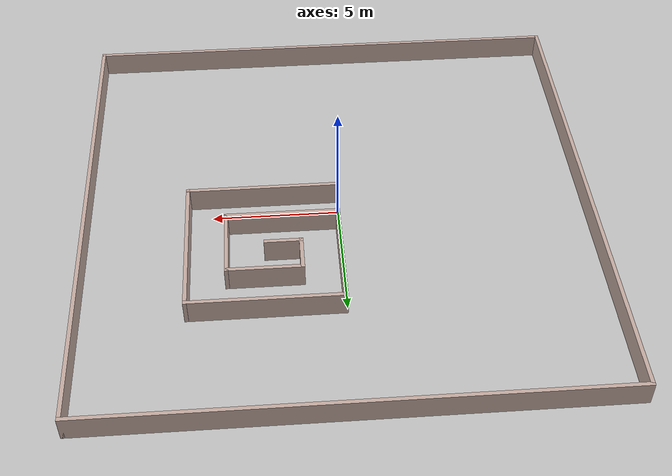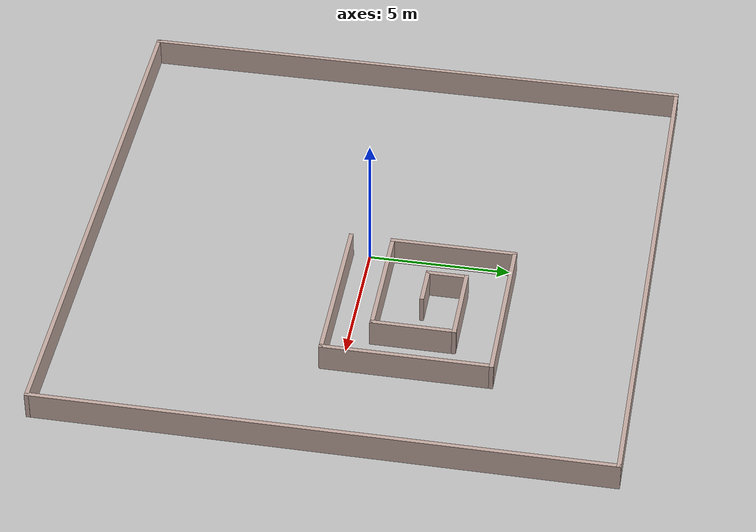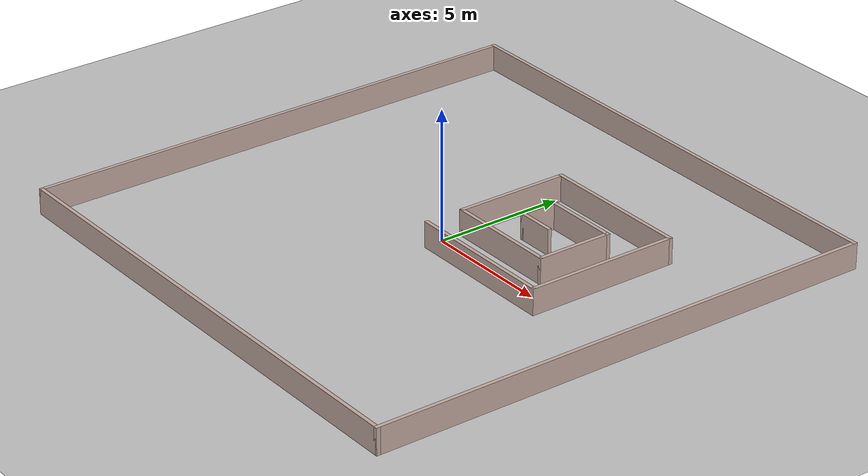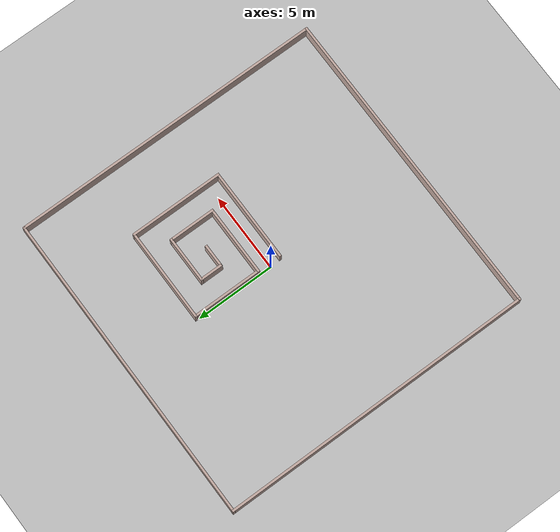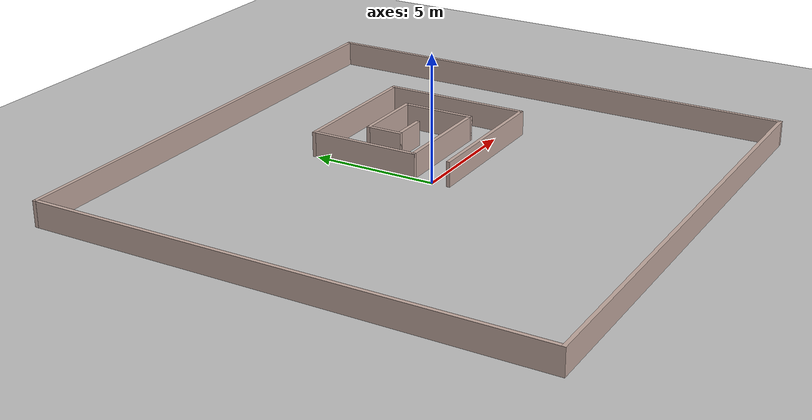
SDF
<?xml version="1.0"?>
<sdf version='1.7'>
  <world name='labirinth'>

    <physics type="ode">
      <max_step_size>0.001</max_step_size>
      <real_time_factor>1</real_time_factor>
    </physics>

    <gui fullscreen='0'>
      <camera name='user_camera'>
        <pose>-7 -3 1.6 0 0.26 0.2</pose>
        <view_controller>orbit</view_controller>
        <projection_type>perspective</projection_type>
      </camera>
    </gui>

    <scene>
      <grid>true</grid>
      <origin_visual>true</origin_visual>
    </scene>

    <include>
      <uri>model://sun</uri>
    </include>

    <include>
      <pose>3 2.25 0 0 0 0</pose>
      <uri>model://labirinth</uri>
    </include>

    <include>
      <pose>0 0 0 0 0 0</pose>
      <uri>model://walls</uri>
    </include>

    <model name="ground">
      <static>true</static>
      <link name="link">
        <visual name="visual">
          <geometry>
            <plane>
              <size>20 20</size>
            </plane>
          </geometry>
          <material>
            <ambient>0.75 0.75 0.75 1</ambient>
            <diffuse>0.75 0.75 0.75 1</diffuse>
            <specular>0.75 0.75 0.75 1</specular>
          </material>
        </visual>
        <collision name="collision">
          <geometry>
            <plane>
              <size>20 20</size>
            </plane>
          </geometry>
        </collision>
      </link>
    </model>
  </world>
</sdf>

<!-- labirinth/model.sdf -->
<sdf version='1.7'>
  <model name='labirinth'>
    <static>false</static>
    <link name='Wall_11'>
      <collision name='Wall_11_Collision'>
        <geometry>
          <box>
            <size>6 0.15 1</size>
          </box>
        </geometry>
        <pose>0 0 0.5 0 -0 0</pose>
      </collision>
      <visual name='Wall_11_Visual'>
        <pose>0 0 0.5 0 -0 0</pose>
        <geometry>
          <box>
            <size>6 0.15 1</size>
          </box>
        </geometry>
        <material>
          <script>
            <uri>file://media/materials/scripts/gazebo.material</uri>
            <name>Gazebo/Grey</name>
          </script>
          <ambient>0.760784 0.662745 0.627451 1</ambient>
        </material>
        <meta>
          <layer>0</layer>
        </meta>
      </visual>
      <pose>-0 -2.925 0 0 -0 3.14159</pose>
    </link>
    <link name='Wall_14'>
      <collision name='Wall_14_Collision'>
        <geometry>
          <box>
            <size>6 0.15 1</size>
          </box>
        </geometry>
        <pose>0 0 0.5 0 -0 0</pose>
      </collision>
      <visual name='Wall_14_Visual'>
        <pose>0 0 0.5 0 -0 0</pose>
        <geometry>
          <box>
            <size>6 0.15 1</size>
          </box>
        </geometry>
        <material>
          <script>
            <uri>file://media/materials/scripts/gazebo.material</uri>
            <name>Gazebo/Grey</name>
          </script>
          <ambient>0.760784 0.662745 0.627451 1</ambient>
        </material>
        <meta>
          <layer>0</layer>
        </meta>
      </visual>
      <pose>2.925 0 0 0 -0 1.5708</pose>
    </link>
    <link name='Wall_15'>
      <collision name='Wall_15_Collision'>
        <geometry>
          <box>
            <size>6 0.15 1</size>
          </box>
        </geometry>
        <pose>0 0 0.5 0 -0 0</pose>
      </collision>
      <visual name='Wall_15_Visual'>
        <pose>0 0 0.5 0 -0 0</pose>
        <geometry>
          <box>
            <size>6 0.15 1</size>
          </box>
        </geometry>
        <material>
          <script>
            <uri>file://media/materials/scripts/gazebo.material</uri>
            <name>Gazebo/Grey</name>
          </script>
          <ambient>0.760784 0.662745 0.627451 1</ambient>
        </material>
        <meta>
          <layer>0</layer>
        </meta>
      </visual>
      <pose>-0 2.925 0 0 -0 3.14159</pose>
    </link>
    <link name='Wall_16'>
      <collision name='Wall_16_Collision'>
        <geometry>
          <box>
            <size>4.5 0.15 1</size>
          </box>
        </geometry>
        <pose>0 0 0.5 0 -0 0</pose>
      </collision>
      <visual name='Wall_16_Visual'>
        <pose>0 0 0.5 0 -0 0</pose>
        <geometry>
          <box>
            <size>4.5 0.15 1</size>
          </box>
        </geometry>
        <material>
          <script>
            <uri>file://media/materials/scripts/gazebo.material</uri>
            <name>Gazebo/Grey</name>
          </script>
          <ambient>0.760784 0.662745 0.627451 1</ambient>
        </material>
        <meta>
          <layer>0</layer>
        </meta>
      </visual>
      <pose>-2.925 0.75 0 0 -0 -1.5708</pose>
    </link>
    <link name='Wall_18'>
      <collision name='Wall_18_Collision'>
        <geometry>
          <box>
            <size>4.5 0.15 1</size>
          </box>
        </geometry>
        <pose>0 0 0.5 0 -0 0</pose>
      </collision>
      <visual name='Wall_18_Visual'>
        <pose>0 0 0.5 0 -0 0</pose>
        <geometry>
          <box>
            <size>4.5 0.15 1</size>
          </box>
        </geometry>
        <material>
          <script>
            <uri>file://media/materials/scripts/gazebo.material</uri>
            <name>Gazebo/Grey</name>
          </script>
          <ambient>0.760784 0.662745 0.627451 1</ambient>
        </material>
        <meta>
          <layer>0</layer>
        </meta>
      </visual>
      <pose>-0.75 -1.425 0 0 -0 0</pose>
    </link>
    <link name='Wall_20'>
      <collision name='Wall_20_Collision'>
        <geometry>
          <box>
            <size>3 0.15 1</size>
          </box>
        </geometry>
        <pose>0 0 0.5 0 -0 0</pose>
      </collision>
      <visual name='Wall_20_Visual'>
        <pose>0 0 0.5 0 -0 0</pose>
        <geometry>
          <box>
            <size>3 0.15 1</size>
          </box>
        </geometry>
        <material>
          <script>
            <uri>file://media/materials/scripts/gazebo.material</uri>
            <name>Gazebo/Grey</name>
          </script>
          <ambient>0.760784 0.662745 0.627451 1</ambient>
        </material>
        <meta>
          <layer>0</layer>
        </meta>
      </visual>
      <pose>1.425 0 0 0 -0 1.5708</pose>
    </link>
    <link name='Wall_21'>
      <collision name='Wall_21_Collision'>
        <geometry>
          <box>
            <size>3 0.15 1</size>
          </box>
        </geometry>
        <pose>0 0 0.5 0 -0 0</pose>
      </collision>
      <visual name='Wall_21_Visual'>
        <pose>0 0 0.5 0 -0 0</pose>
        <geometry>
          <box>
            <size>3 0.15 1</size>
          </box>
        </geometry>
        <material>
          <script>
            <uri>file://media/materials/scripts/gazebo.material</uri>
            <name>Gazebo/Grey</name>
          </script>
          <ambient>0.760784 0.662745 0.627451 1</ambient>
        </material>
        <meta>
          <layer>0</layer>
        </meta>
      </visual>
      <pose>-0 1.425 0 0 -0 3.14159</pose>
    </link>
    <link name='Wall_22'>
      <collision name='Wall_22_Collision'>
        <geometry>
          <box>
            <size>1.5 0.15 1</size>
          </box>
        </geometry>
        <pose>0 0 0.5 0 -0 0</pose>
      </collision>
      <visual name='Wall_22_Visual'>
        <pose>0 0 0.5 0 -0 0</pose>
        <geometry>
          <box>
            <size>1.5 0.15 1</size>
          </box>
        </geometry>
        <material>
          <script>
            <uri>file://media/materials/scripts/gazebo.material</uri>
            <name>Gazebo/Grey</name>
          </script>
          <ambient>0.760784 0.662745 0.627451 1</ambient>
        </material>
        <meta>
          <layer>0</layer>
        </meta>
      </visual>
      <pose>-1.425 0.75 0 0 -0 -1.5708</pose>
    </link>
    <link name='Wall_23'>
      <collision name='Wall_23_Collision'>
        <geometry>
          <box>
            <size>1.5 0.15 1</size>
          </box>
        </geometry>
        <pose>0 0 0.5 0 -0 0</pose>
      </collision>
      <visual name='Wall_23_Visual'>
        <pose>0 0 0.5 0 -0 0</pose>
        <geometry>
          <box>
            <size>1.5 0.15 1</size>
          </box>
        </geometry>
        <material>
          <script>
            <uri>file://media/materials/scripts/gazebo.material</uri>
            <name>Gazebo/Grey</name>
          </script>
          <ambient>0.760784 0.662745 0.627451 1</ambient>
        </material>
        <meta>
          <layer>0</layer>
        </meta>
      </visual>
      <pose>-0.75 0.075 0 0 -0 0</pose>
    </link>
    <static>1</static>
  </model>
</sdf>

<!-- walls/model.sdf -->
<sdf version='1.7'>
  <model name='walls'>
    <pose>0.796 -5.455 0 0 -0 0</pose>
    <link name='Wall_11'>
      <collision name='Wall_11_Collision'>
        <geometry>
          <box>
            <size>20 0.15 1</size>
          </box>
        </geometry>
        <pose>0 0 0.5 0 -0 0</pose>
      </collision>
      <visual name='Wall_11_Visual'>
        <pose>0 0 0.5 0 -0 0</pose>
        <geometry>
          <box>
            <size>20 0.15 1</size>
          </box>
        </geometry>
        <material>
          <script>
            <uri>file://media/materials/scripts/gazebo.material</uri>
            <name>Gazebo/Grey</name>
          </script>
          <ambient>0.760784 0.662745 0.627451 1</ambient>
        </material>
        <meta>
          <layer>0</layer>
        </meta>
      </visual>
      <pose>0 9.925 0 0 -0 0</pose>
    </link>
    <link name='Wall_18'>
      <collision name='Wall_18_Collision'>
        <geometry>
          <box>
            <size>20 0.15 1</size>
          </box>
        </geometry>
        <pose>0 0 0.5 0 -0 0</pose>
      </collision>
      <visual name='Wall_18_Visual'>
        <pose>0 0 0.5 0 -0 0</pose>
        <geometry>
          <box>
            <size>20 0.15 1</size>
          </box>
        </geometry>
        <material>
          <script>
            <uri>file://media/materials/scripts/gazebo.material</uri>
            <name>Gazebo/Grey</name>
          </script>
          <ambient>0.760784 0.662745 0.627451 1</ambient>
        </material>
        <meta>
          <layer>0</layer>
        </meta>
      </visual>
      <pose>-9.925 0 0 0 -0 -1.5708</pose>
    </link>
    <link name='Wall_20'>
      <collision name='Wall_20_Collision'>
        <geometry>
          <box>
            <size>20 0.15 1</size>
          </box>
        </geometry>
        <pose>0 0 0.5 0 -0 0</pose>
      </collision>
      <visual name='Wall_20_Visual'>
        <pose>0 0 0.5 0 -0 0</pose>
        <geometry>
          <box>
            <size>20 0.15 1</size>
          </box>
        </geometry>
        <material>
          <script>
            <uri>file://media/materials/scripts/gazebo.material</uri>
            <name>Gazebo/Grey</name>
          </script>
          <ambient>0.760784 0.662745 0.627451 1</ambient>
        </material>
        <meta>
          <layer>0</layer>
        </meta>
      </visual>
      <pose>9.925 0 0 0 -0 -1.5708</pose>
    </link>
    <link name='Wall_22'>
      <collision name='Wall_22_Collision'>
        <geometry>
          <box>
            <size>20 0.15 1</size>
          </box>
        </geometry>
        <pose>0 0 0.5 0 -0 0</pose>
      </collision>
      <visual name='Wall_22_Visual'>
        <pose>0 0 0.5 0 -0 0</pose>
        <geometry>
          <box>
            <size>20 0.15 1</size>
          </box>
        </geometry>
        <material>
          <script>
            <uri>file://media/materials/scripts/gazebo.material</uri>
            <name>Gazebo/Grey</name>
          </script>
          <ambient>0.760784 0.662745 0.627451 1</ambient>
        </material>
        <meta>
          <layer>0</layer>
        </meta>
      </visual>
      <pose>0 -9.925 0 0 -0 0</pose>
    </link>
    <static>1</static>
  </model>
</sdf>
